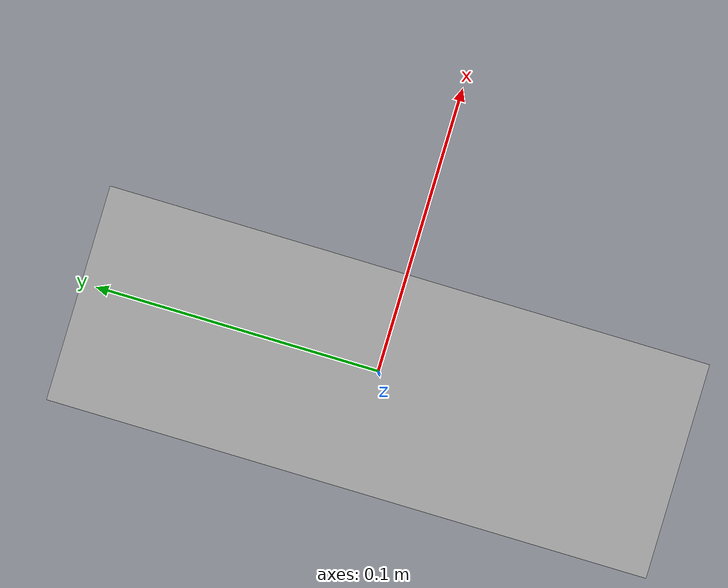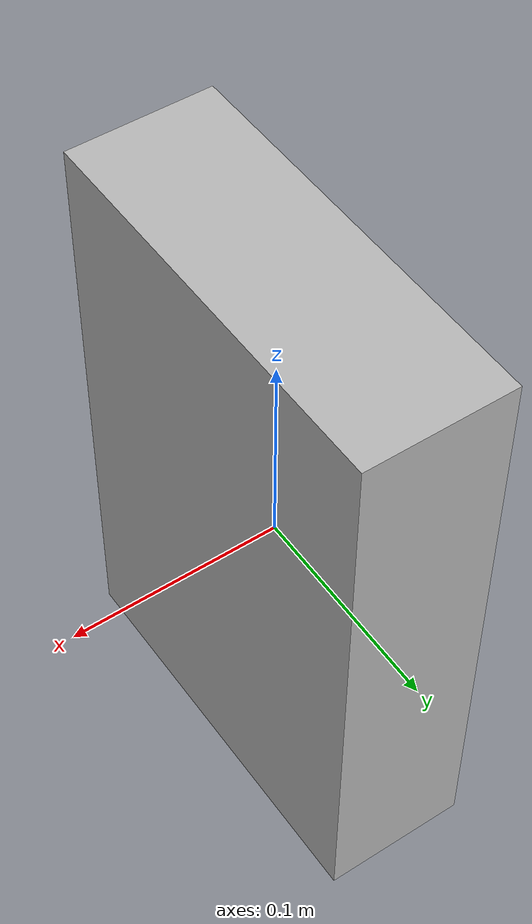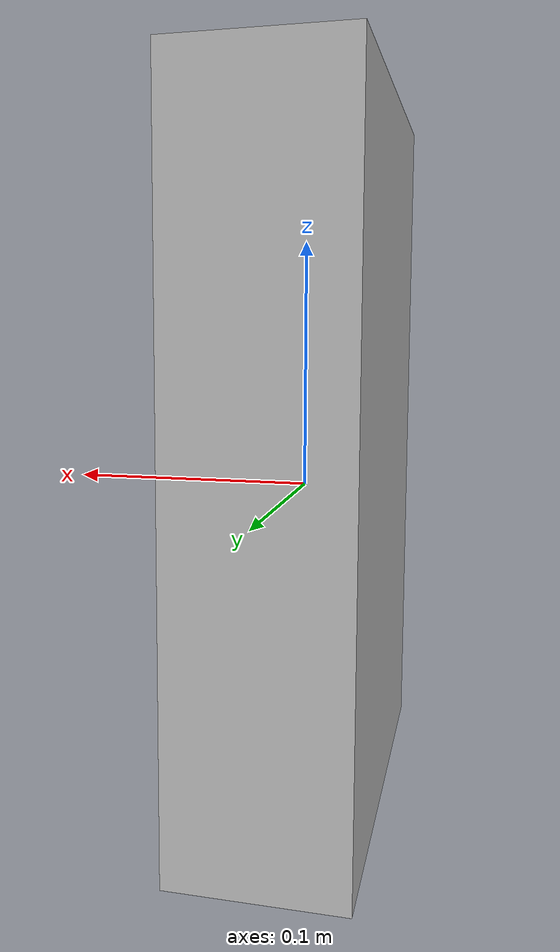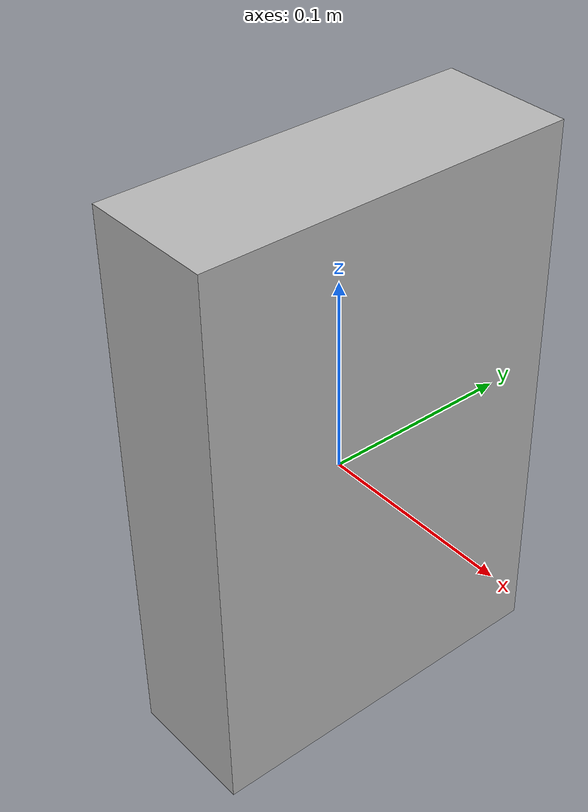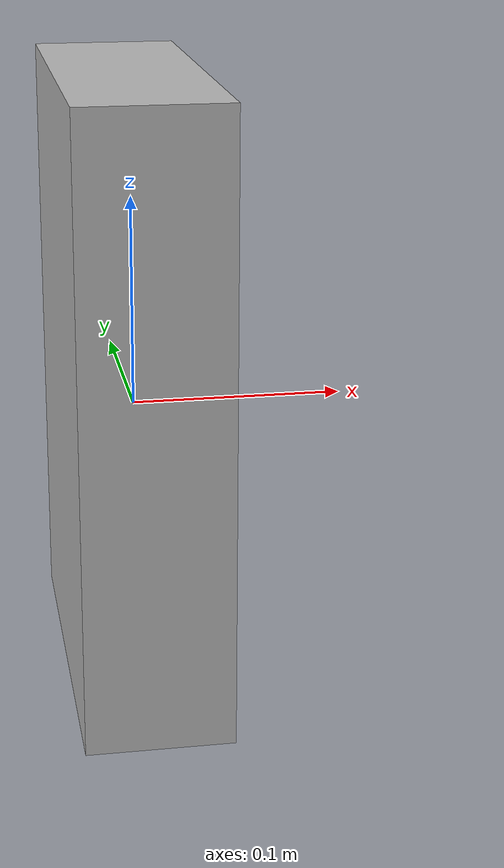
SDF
<?xml version='1.0'?>
<sdf version='1.6'>
  <model name='corn_flakes_package'>
    <link name='base_link'>
      <pose frame=''>0 0 0 0 -0 0</pose>
      <inertial>
        <pose frame=''>0 0 0 0 -0 0</pose>
        <mass>0.445</mass>
        <inertia>
          <ixx>1</ixx>
          <ixy>0</ixy>
          <ixz>0</ixz>
          <iyy>1</iyy>
          <iyz>0</iyz>
          <izz>1</izz>
        </inertia>
      </inertial>
      <self_collide>0</self_collide>
      <kinematic>0</kinematic>
      <visual name='base_link_visual'>
        <pose frame=''>0 0 0 0 -0 0</pose>
        <geometry>
          <mesh>
            <scale>1 1 1</scale>
            <uri>/home/dede/workspaces/lucis/src/cob_simulation/cob_gazebo_objects/Media/models/corn_flakes_package.dae</uri>
          </mesh>
        </geometry>
        <cast_shadows>1</cast_shadows>
        <transparency>0</transparency>
      </visual>
      <collision name='base_link_collision'>
        <laser_retro>0</laser_retro>
        <max_contacts>10</max_contacts>
        <pose frame=''>0 0 0.01 0 -0 0</pose>
        <geometry>
          <box>
            <size>0.068 0.192 0.29</size>
          </box>
        </geometry>
        <surface>
          <friction>
            <ode>
              <mu>1</mu>
              <mu2>1</mu2>
              <fdir1>0 0 0</fdir1>
              <slip1>0</slip1>
              <slip2>0</slip2>
            </ode>
            <torsional>
              <coefficient>1</coefficient>
              <patch_radius>0</patch_radius>
              <surface_radius>0</surface_radius>
              <use_patch_radius>1</use_patch_radius>
              <ode>
                <slip>0</slip>
              </ode>
            </torsional>
          </friction>
          <bounce>
            <restitution_coefficient>0</restitution_coefficient>
            <threshold>1e+06</threshold>
          </bounce>
          <contact>
            <collide_without_contact>0</collide_without_contact>
            <collide_without_contact_bitmask>1</collide_without_contact_bitmask>
            <collide_bitmask>1</collide_bitmask>
            <ode>
              <soft_cfm>0</soft_cfm>
              <soft_erp>0.2</soft_erp>
              <kp>1e+13</kp>
              <kd>1</kd>
              <max_vel>0.01</max_vel>
              <min_depth>0</min_depth>
            </ode>
            <bullet>
              <split_impulse>1</split_impulse>
              <split_impulse_penetration_threshold>-0.01</split_impulse_penetration_threshold>
              <soft_cfm>0</soft_cfm>
              <soft_erp>0.2</soft_erp>
              <kp>1e+13</kp>
              <kd>1</kd>
            </bullet>
          </contact>
        </surface>
      </collision>
    </link>
    <static>1</static>
    <allow_auto_disable>1</allow_auto_disable>
  </model>
</sdf>
